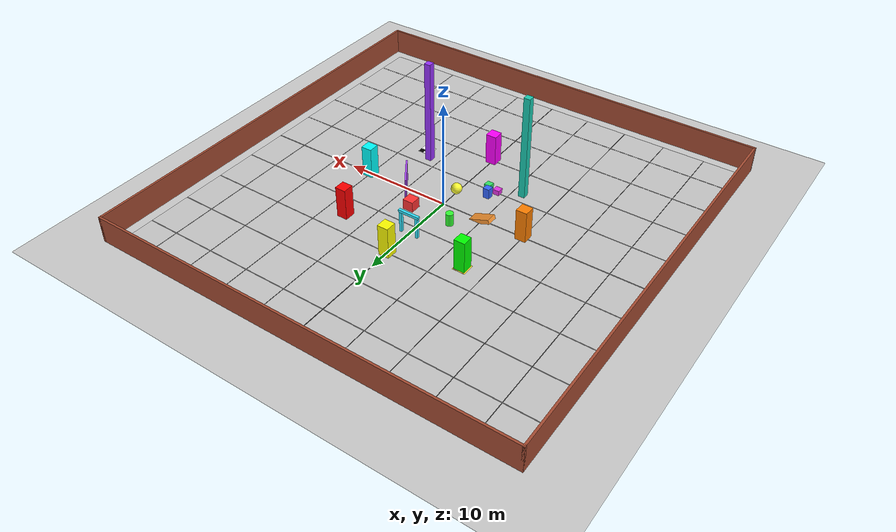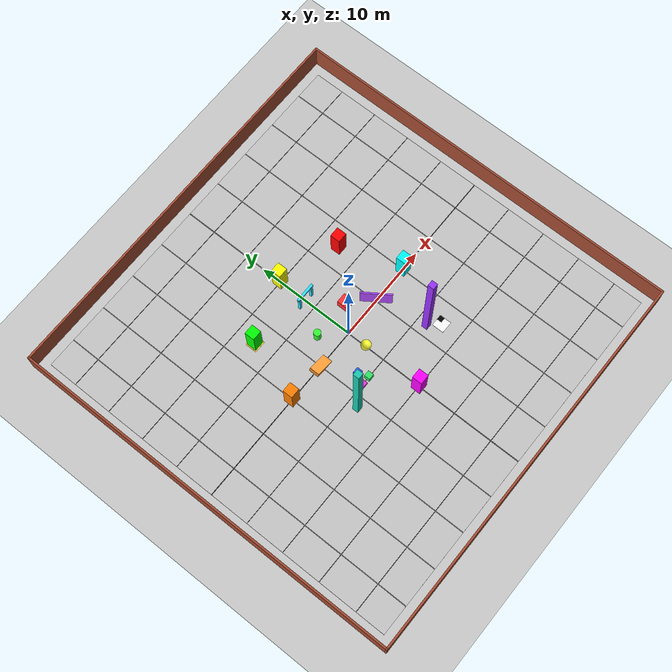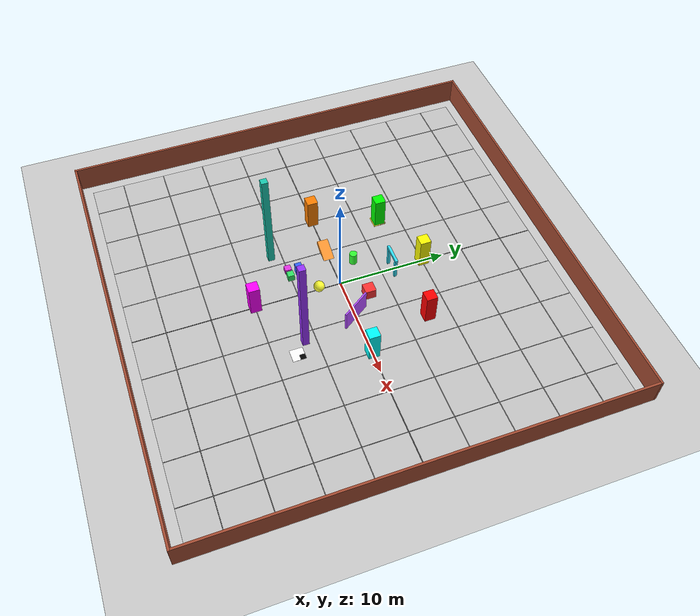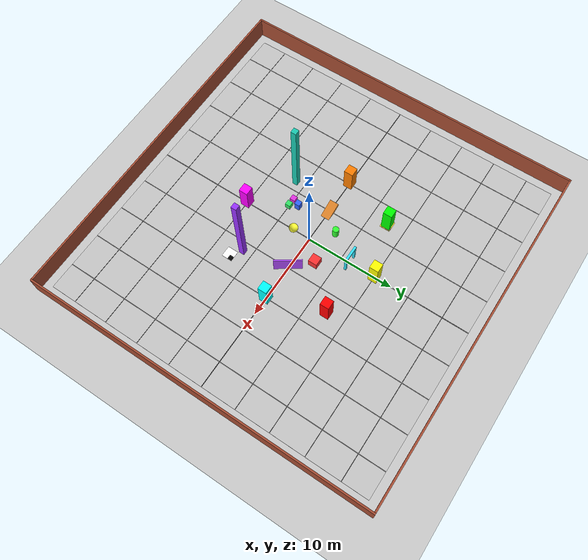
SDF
<sdf version='1.6'>
  <world name='default'>

    <light name='sun' type='directional'>
      <cast_shadows>0</cast_shadows>
      <pose>0 0 10 0 0 0</pose>
      <diffuse>0.8 0.8 0.8 1</diffuse>
      <specular>0.2 0.2 0.2 1</specular>
      <direction>-0.5 0.1 -0.9</direction>
    </light>

    <physics name='default_physics' default='1' type='ode'>
      <max_step_size>0.004</max_step_size>
      <real_time_factor>1</real_time_factor>
      <real_time_update_rate>250</real_time_update_rate>
    </physics>

    <scene>
      <ambient>0.4 0.4 0.4 1</ambient>
      <background>0.7 0.7 0.7 1</background>
      <shadows>0</shadows>
    </scene>

    <gravity>0 0 -9.8</gravity>

    <!-- 外层大地面（灰） -->
    <model name='ground_plane'>
      <static>1</static>
      <link name='link'>
        <collision name='collision'>
          <geometry>
            <plane>
              <normal>0 0 1</normal>
              <size>200 200</size>
            </plane>
          </geometry>
        </collision>
        <visual name='visual'>
          <cast_shadows>0</cast_shadows>
          <geometry>
            <plane>
              <normal>0 0 1</normal>
              <size>200 200</size>
            </plane>
          </geometry>
          <material>
            <script>
              <uri>file://media/materials/scripts/gazebo.material</uri>
              <name>Gazebo/Grey</name>
            </script>
          </material>
        </visual>
      </link>
    </model>

    <!-- 围墙内“VINS友好地面”：浅灰底（混凝土感） -->
    <model name='vins_floor'>
      <static>1</static>
      <!-- 抬高一点点避免 z-fighting -->
      <pose>0 0 0.015 0 0 0</pose>
      <link name='link'>
        <collision name='collision'>
          <geometry><box><size>38 38 0.02</size></box></geometry>
        </collision>
        <visual name='visual'>
          <cast_shadows>0</cast_shadows>
          <geometry><box><size>38 38 0.02</size></box></geometry>
          <material>
            <!-- 浅灰，不要太白，避免过曝；也不要纯色蓝那样缺特征 -->
            <ambient>0.82 0.82 0.82 1</ambient>
            <diffuse>0.78 0.78 0.78 1</diffuse>
            <specular>0.02 0.02 0.02 1</specular>
          </material>
        </visual>
      </link>
    </model>

    <!-- 地面网格线：强对比特征（对VINS/SLAM很关键） -->
    <!-- 用一整个 model 放多条 link，性能比放几十个 model 更好 -->
    <model name='floor_grid_lines'>
      <static>1</static>

      <!-- 线条厚度/高度（越薄越像贴地涂装） -->
      <!-- 这里线宽 0.06m，高 0.01m，抬到 z=0.03 -->
      <!-- X方向长线（平行X轴，改变y位置） -->
      <link name='xline_y_-16'>
        <pose>0 -16 0.03 0 0 0</pose>
        <collision name='c'><geometry><box><size>38 0.06 0.01</size></box></geometry></collision>
        <visual name='v'><geometry><box><size>38 0.06 0.01</size></box></geometry>
          <material><ambient>0.05 0.05 0.05 1</ambient><diffuse>0.05 0.05 0.05 1</diffuse></material>
        </visual>
      </link>
      <link name='xline_y_-12'>
        <pose>0 -12 0.03 0 0 0</pose>
        <collision name='c'><geometry><box><size>38 0.06 0.01</size></box></geometry></collision>
        <visual name='v'><geometry><box><size>38 0.06 0.01</size></box></geometry>
          <material><ambient>0.05 0.05 0.05 1</ambient><diffuse>0.05 0.05 0.05 1</diffuse></material>
        </visual>
      </link>
      <link name='xline_y_-8'>
        <pose>0 -8 0.03 0 0 0</pose>
        <collision name='c'><geometry><box><size>38 0.06 0.01</size></box></geometry></collision>
        <visual name='v'><geometry><box><size>38 0.06 0.01</size></box></geometry>
          <material><ambient>0.05 0.05 0.05 1</ambient><diffuse>0.05 0.05 0.05 1</diffuse></material>
        </visual>
      </link>
      <link name='xline_y_-4'>
        <pose>0 -4 0.03 0 0 0</pose>
        <collision name='c'><geometry><box><size>38 0.06 0.01</size></box></geometry></collision>
        <visual name='v'><geometry><box><size>38 0.06 0.01</size></box></geometry>
          <material><ambient>0.05 0.05 0.05 1</ambient><diffuse>0.05 0.05 0.05 1</diffuse></material>
        </visual>
      </link>
      <link name='xline_y_0'>
        <pose>0 0 0.03 0 0 0</pose>
        <collision name='c'><geometry><box><size>38 0.08 0.012</size></box></geometry></collision>
        <visual name='v'><geometry><box><size>38 0.08 0.012</size></box></geometry>
          <!-- 中心线稍宽 -->
          <material><ambient>0.02 0.02 0.02 1</ambient><diffuse>0.02 0.02 0.02 1</diffuse></material>
        </visual>
      </link>
      <link name='xline_y_4'>
        <pose>0 4 0.03 0 0 0</pose>
        <collision name='c'><geometry><box><size>38 0.06 0.01</size></box></geometry></collision>
        <visual name='v'><geometry><box><size>38 0.06 0.01</size></box></geometry>
          <material><ambient>0.05 0.05 0.05 1</ambient><diffuse>0.05 0.05 0.05 1</diffuse></material>
        </visual>
      </link>
      <link name='xline_y_8'>
        <pose>0 8 0.03 0 0 0</pose>
        <collision name='c'><geometry><box><size>38 0.06 0.01</size></box></geometry></collision>
        <visual name='v'><geometry><box><size>38 0.06 0.01</size></box></geometry>
          <material><ambient>0.05 0.05 0.05 1</ambient><diffuse>0.05 0.05 0.05 1</diffuse></material>
        </visual>
      </link>
      <link name='xline_y_12'>
        <pose>0 12 0.03 0 0 0</pose>
        <collision name='c'><geometry><box><size>38 0.06 0.01</size></box></geometry></collision>
        <visual name='v'><geometry><box><size>38 0.06 0.01</size></box></geometry>
          <material><ambient>0.05 0.05 0.05 1</ambient><diffuse>0.05 0.05 0.05 1</diffuse></material>
        </visual>
      </link>
      <link name='xline_y_16'>
        <pose>0 16 0.03 0 0 0</pose>
        <collision name='c'><geometry><box><size>38 0.06 0.01</size></box></geometry></collision>
        <visual name='v'><geometry><box><size>38 0.06 0.01</size></box></geometry>
          <material><ambient>0.05 0.05 0.05 1</ambient><diffuse>0.05 0.05 0.05 1</diffuse></material>
        </visual>
      </link>

      <!-- Y方向长线（平行Y轴，改变x位置） -->
      <link name='yline_x_-16'>
        <pose>-16 0 0.03 0 0 0</pose>
        <collision name='c'><geometry><box><size>0.06 38 0.01</size></box></geometry></collision>
        <visual name='v'><geometry><box><size>0.06 38 0.01</size></box></geometry>
          <material><ambient>0.05 0.05 0.05 1</ambient><diffuse>0.05 0.05 0.05 1</diffuse></material>
        </visual>
      </link>
      <link name='yline_x_-12'>
        <pose>-12 0 0.03 0 0 0</pose>
        <collision name='c'><geometry><box><size>0.06 38 0.01</size></box></geometry></collision>
        <visual name='v'><geometry><box><size>0.06 38 0.01</size></box></geometry>
          <material><ambient>0.05 0.05 0.05 1</ambient><diffuse>0.05 0.05 0.05 1</diffuse></material>
        </visual>
      </link>
      <link name='yline_x_-8'>
        <pose>-8 0 0.03 0 0 0</pose>
        <collision name='c'><geometry><box><size>0.06 38 0.01</size></box></geometry></collision>
        <visual name='v'><geometry><box><size>0.06 38 0.01</size></box></geometry>
          <material><ambient>0.05 0.05 0.05 1</ambient><diffuse>0.05 0.05 0.05 1</diffuse></material>
        </visual>
      </link>
      <link name='yline_x_-4'>
        <pose>-4 0 0.03 0 0 0</pose>
        <collision name='c'><geometry><box><size>0.06 38 0.01</size></box></geometry></collision>
        <visual name='v'><geometry><box><size>0.06 38 0.01</size></box></geometry>
          <material><ambient>0.05 0.05 0.05 1</ambient><diffuse>0.05 0.05 0.05 1</diffuse></material>
        </visual>
      </link>
      <link name='yline_x_0'>
        <pose>0 0 0.03 0 0 0</pose>
        <collision name='c'><geometry><box><size>0.08 38 0.012</size></box></geometry></collision>
        <visual name='v'><geometry><box><size>0.08 38 0.012</size></box></geometry>
          <material><ambient>0.02 0.02 0.02 1</ambient><diffuse>0.02 0.02 0.02 1</diffuse></material>
        </visual>
      </link>
      <link name='yline_x_4'>
        <pose>4 0 0.03 0 0 0</pose>
        <collision name='c'><geometry><box><size>0.06 38 0.01</size></box></geometry></collision>
        <visual name='v'><geometry><box><size>0.06 38 0.01</size></box></geometry>
          <material><ambient>0.05 0.05 0.05 1</ambient><diffuse>0.05 0.05 0.05 1</diffuse></material>
        </visual>
      </link>
      <link name='yline_x_8'>
        <pose>8 0 0.03 0 0 0</pose>
        <collision name='c'><geometry><box><size>0.06 38 0.01</size></box></geometry></collision>
        <visual name='v'><geometry><box><size>0.06 38 0.01</size></box></geometry>
          <material><ambient>0.05 0.05 0.05 1</ambient><diffuse>0.05 0.05 0.05 1</diffuse></material>
        </visual>
      </link>
      <link name='yline_x_12'>
        <pose>12 0 0.03 0 0 0</pose>
        <collision name='c'><geometry><box><size>0.06 38 0.01</size></box></geometry></collision>
        <visual name='v'><geometry><box><size>0.06 38 0.01</size></box></geometry>
          <material><ambient>0.05 0.05 0.05 1</ambient><diffuse>0.05 0.05 0.05 1</diffuse></material>
        </visual>
      </link>
      <link name='yline_x_16'>
        <pose>16 0 0.03 0 0 0</pose>
        <collision name='c'><geometry><box><size>0.06 38 0.01</size></box></geometry></collision>
        <visual name='v'><geometry><box><size>0.06 38 0.01</size></box></geometry>
          <material><ambient>0.05 0.05 0.05 1</ambient><diffuse>0.05 0.05 0.05 1</diffuse></material>
        </visual>
      </link>

    </model>

    <!-- 少量高对比“标记块”（像地贴/标志），增强近地纹理与角点 -->
    <model name='floor_markers'>
      <static>1</static>

      <link name='m1'>
        <pose>6 -6 0.031 0 0 0</pose>
        <collision name='c'><geometry><box><size>1.2 1.2 0.01</size></box></geometry></collision>
        <visual name='v'><geometry><box><size>1.2 1.2 0.01</size></box></geometry>
          <material><ambient>1 1 1 1</ambient><diffuse>1 1 1 1</diffuse></material>
        </visual>
      </link>

      <link name='m2'>
        <pose>6.35 -5.65 0.032 0 0 0</pose>
        <collision name='c'><geometry><box><size>0.5 0.5 0.01</size></box></geometry></collision>
        <visual name='v'><geometry><box><size>0.5 0.5 0.01</size></box></geometry>
          <material><ambient>0 0 0 1</ambient><diffuse>0 0 0 1</diffuse></material>
        </visual>
      </link>

      <link name='m3'>
        <pose>-6 6 0.031 0 0 0</pose>
        <collision name='c'><geometry><box><size>1.2 1.2 0.01</size></box></geometry></collision>
        <visual name='v'><geometry><box><size>1.2 1.2 0.01</size></box></geometry>
          <material><ambient>1 0.9 0.2 1</ambient><diffuse>1 0.9 0.2 1</diffuse></material>
        </visual>
      </link>

      <link name='m4'>
        <pose>-5.7 6.3 0.032 0 0 0</pose>
        <collision name='c'><geometry><box><size>0.5 0.5 0.01</size></box></geometry></collision>
        <visual name='v'><geometry><box><size>0.5 0.5 0.01</size></box></geometry>
          <material><ambient>0 0 0 1</ambient><diffuse>0 0 0 1</diffuse></material>
        </visual>
      </link>

    </model>

    <!-- 围墙：40x40，中心在(0,0)，墙高2.5 -->
    <model name='walls'>
      <static>1</static>

      <!-- 北墙 y=+20 -->
      <link name='wall_n'>
        <pose>0 20 1.25 0 0 0</pose>
        <collision name='collision'>
          <geometry><box><size>40.2 0.2 2.5</size></box></geometry>
        </collision>
        <visual name='visual'>
          <geometry><box><size>40.2 0.2 2.5</size></box></geometry>
          <material>
            <script>
              <uri>file://media/materials/scripts/gazebo.material</uri>
              <name>Gazebo/Bricks</name>
            </script>
          </material>
        </visual>
      </link>

      <!-- 南墙 y=-20 -->
      <link name='wall_s'>
        <pose>0 -20 1.25 0 0 0</pose>
        <collision name='collision'>
          <geometry><box><size>40.2 0.2 2.5</size></box></geometry>
        </collision>
        <visual name='visual'>
          <geometry><box><size>40.2 0.2 2.5</size></box></geometry>
          <material>
            <script>
              <uri>file://media/materials/scripts/gazebo.material</uri>
              <name>Gazebo/Bricks</name>
            </script>
          </material>
        </visual>
      </link>

      <!-- 东墙 x=+20 -->
      <link name='wall_e'>
        <pose>20 0 1.25 0 0 0</pose>
        <collision name='collision'>
          <geometry><box><size>0.2 40.2 2.5</size></box></geometry>
        </collision>
        <visual name='visual'>
          <geometry><box><size>0.2 40.2 2.5</size></box></geometry>
          <material>
            <script>
              <uri>file://media/materials/scripts/gazebo.material</uri>
              <name>Gazebo/Bricks</name>
            </script>
          </material>
        </visual>
      </link>

      <!-- 西墙 x=-20 -->
      <link name='wall_w'>
        <pose>-20 0 1.25 0 0 0</pose>
        <collision name='collision'>
          <geometry><box><size>0.2 40.2 2.5</size></box></geometry>
        </collision>
        <visual name='visual'>
          <geometry><box><size>0.2 40.2 2.5</size></box></geometry>
          <material>
            <script>
              <uri>file://media/materials/scripts/gazebo.material</uri>
              <name>Gazebo/Bricks</name>
            </script>
          </material>
        </visual>
      </link>

    </model>

    <!-- ===== 彩色立方体障碍物：全部 box ===== -->
    <model name='ob_red'>
      <static>1</static>
      <pose>6 6 1.5 0 0 0</pose>
      <link name='link'>
        <collision name='collision'><geometry><box><size>1 1 3</size></box></geometry></collision>
        <visual name='visual'>
          <geometry><box><size>1 1 3</size></box></geometry>
          <material><ambient>1 0 0 1</ambient><diffuse>1 0 0 1</diffuse></material>
        </visual>
      </link>
    </model>

    <model name='ob_green'>
      <static>1</static>
      <pose>-6 6 1.5 0 0 0</pose>
      <link name='link'>
        <collision name='collision'><geometry><box><size>1 1 3</size></box></geometry></collision>
        <visual name='visual'>
          <geometry><box><size>1 1 3</size></box></geometry>
          <material><ambient>0 1 0 1</ambient><diffuse>0 1 0 1</diffuse></material>
        </visual>
      </link>
    </model>

    <model name='ob_yellow'>
      <static>1</static>
      <pose>0 8 1.5 0 0 0</pose>
      <link name='link'>
        <collision name='collision'><geometry><box><size>1 1 3</size></box></geometry></collision>
        <visual name='visual'>
          <geometry><box><size>1 1 3</size></box></geometry>
          <material><ambient>1 1 0 1</ambient><diffuse>1 1 0 1</diffuse></material>
        </visual>
      </link>
    </model>

    <model name='ob_cyan'>
      <static>1</static>
      <pose>8 0 1.5 0 0 0</pose>
      <link name='link'>
        <collision name='collision'><geometry><box><size>1 1 3</size></box></geometry></collision>
        <visual name='visual'>
          <geometry><box><size>1 1 3</size></box></geometry>
          <material><ambient>0 1 1 1</ambient><diffuse>0 1 1 1</diffuse></material>
        </visual>
      </link>
    </model>

    <model name='ob_magenta'>
      <static>1</static>
      <pose>0 -8 1.5 0 0 0</pose>
      <link name='link'>
        <collision name='collision'><geometry><box><size>1 1 3</size></box></geometry></collision>
        <visual name='visual'>
          <geometry><box><size>1 1 3</size></box></geometry>
          <material><ambient>1 0 1 1</ambient><diffuse>1 0 1 1</diffuse></material>
        </visual>
      </link>
    </model>

    <model name='ob_orange'>
      <static>1</static>
      <pose>-8 0 1.5 0 0 0</pose>
      <link name='link'>
        <collision name='collision'><geometry><box><size>1 1 3</size></box></geometry></collision>
        <visual name='visual'>
          <geometry><box><size>1 1 3</size></box></geometry>
          <material><ambient>1 0.5 0 1</ambient><diffuse>1 0.5 0 1</diffuse></material>
        </visual>
      </link>
    </model>

    <!-- 高塔 -->
    <model name='tower_purple'>
      <static>1</static>
      <pose>5 -5 5 0 0 0</pose>
      <link name='link'>
        <collision name='collision'><geometry><box><size>0.6 0.6 10</size></box></geometry></collision>
        <visual name='visual'>
          <geometry><box><size>0.6 0.6 10</size></box></geometry>
          <material><ambient>0.6 0.2 1 1</ambient><diffuse>0.6 0.2 1 1</diffuse></material>
        </visual>
      </link>
    </model>

    <model name='tower_teal'>
      <static>1</static>
      <pose>-5 -5 5 0 0 0</pose>
      <link name='link'>
        <collision name='collision'><geometry><box><size>0.6 0.6 10</size></box></geometry></collision>
        <visual name='visual'>
          <geometry><box><size>0.6 0.6 10</size></box></geometry>
          <material><ambient>0.1 0.8 0.7 1</ambient><diffuse>0.1 0.8 0.7 1</diffuse></material>
        </visual>
      </link>
    </model>

    <!-- ================== Custom Obstacles (static primitives) ================== -->

    <model name='obs_box_red'>
      <static>1</static>
      <pose>2 2 0.5 0 0 0</pose>
      <link name='link'>
        <collision name='col'><geometry><box><size>1 1 1</size></box></geometry></collision>
        <visual name='vis'>
          <geometry><box><size>1 1 1</size></box></geometry>
          <material>
            <ambient>1 0.2 0.2 1</ambient>
            <diffuse>1 0.2 0.2 1</diffuse>
            <specular>0.05 0.05 0.05 1</specular>
          </material>
        </visual>
      </link>
    </model>

    <!-- 你这里仍保留了圆柱/球体/坡道等：用于深度/规划测试也有价值 -->
    <model name='obs_cyl_green'>
      <static>1</static>
      <pose>-2 2 0.6 0 0 0</pose>
      <link name='link'>
        <collision name='col'><geometry><cylinder><radius>0.35</radius><length>1.2</length></cylinder></geometry></collision>
        <visual name='vis'>
          <geometry><cylinder><radius>0.35</radius><length>1.2</length></cylinder></geometry>
          <material>
            <ambient>0.2 1 0.2 1</ambient>
            <diffuse>0.2 1 0.2 1</diffuse>
            <specular>0.05 0.05 0.05 1</specular>
          </material>
        </visual>
      </link>
    </model>

    <model name='obs_sphere_yellow'>
      <static>1</static>
      <pose>0 -2 0.5 0 0 0</pose>
      <link name='link'>
        <collision name='col'><geometry><sphere><radius>0.5</radius></sphere></geometry></collision>
        <visual name='vis'>
          <geometry><sphere><radius>0.5</radius></sphere></geometry>
          <material>
            <ambient>1 1 0.2 1</ambient>
            <diffuse>1 1 0.2 1</diffuse>
            <specular>0.05 0.05 0.05 1</specular>
          </material>
        </visual>
      </link>
    </model>

    <model name='obs_panel_purple'>
      <static>1</static>
      <pose>4 0 1 0 0 0.6</pose>
      <link name='link'>
        <collision name='col'><geometry><box><size>0.15 3.0 2.0</size></box></geometry></collision>
        <visual name='vis'>
          <geometry><box><size>0.15 3.0 2.0</size></box></geometry>
          <material>
            <ambient>0.7 0.3 1 1</ambient>
            <diffuse>0.7 0.3 1 1</diffuse>
            <specular>0.05 0.05 0.05 1</specular>
          </material>
        </visual>
      </link>
    </model>

    <model name='obs_ramp_orange'>
      <static>1</static>
      <pose>-4 0 0.2 0 0.35 0</pose>
      <link name='link'>
        <collision name='col'><geometry><box><size>2.0 1.0 0.4</size></box></geometry></collision>
        <visual name='vis'>
          <geometry><box><size>2.0 1.0 0.4</size></box></geometry>
          <material>
            <ambient>1 0.6 0.2 1</ambient>
            <diffuse>1 0.6 0.2 1</diffuse>
            <specular>0.05 0.05 0.05 1</specular>
          </material>
        </visual>
      </link>
    </model>

    <model name='obs_gate_cyan'>
      <static>1</static>
      <pose>0 5 0 0 0 0</pose>

      <link name='left'>
        <pose>-0.8 0 1 0 0 0</pose>
        <collision name='col'><geometry><box><size>0.25 0.25 2.0</size></box></geometry></collision>
        <visual name='vis'>
          <geometry><box><size>0.25 0.25 2.0</size></box></geometry>
          <material><ambient>0.2 0.9 1 1</ambient><diffuse>0.2 0.9 1 1</diffuse></material>
        </visual>
      </link>

      <link name='right'>
        <pose>0.8 0 1 0 0 0</pose>
        <collision name='col'><geometry><box><size>0.25 0.25 2.0</size></box></geometry></collision>
        <visual name='vis'>
          <geometry><box><size>0.25 0.25 2.0</size></box></geometry>
          <material><ambient>0.2 0.9 1 1</ambient><diffuse>0.2 0.9 1 1</diffuse></material>
        </visual>
      </link>

      <link name='top'>
        <pose>0 0 2.1 0 0 0</pose>
        <collision name='col'><geometry><box><size>2.0 0.25 0.25</size></box></geometry></collision>
        <visual name='vis'>
          <geometry><box><size>2.0 0.25 0.25</size></box></geometry>
          <material><ambient>0.2 0.9 1 1</ambient><diffuse>0.2 0.9 1 1</diffuse></material>
        </visual>
      </link>
    </model>

    <model name='obs_blocks_cluster'>
      <static>1</static>
      <pose>-3 -4 0 0 0 0</pose>

      <link name='b1'>
        <pose>0 0 0.25 0 0 0</pose>
        <collision name='col'><geometry><box><size>0.6 0.6 0.5</size></box></geometry></collision>
        <visual name='vis'>
          <geometry><box><size>0.6 0.6 0.5</size></box></geometry>
          <material><ambient>0.9 0.2 0.9 1</ambient><diffuse>0.9 0.2 0.9 1</diffuse></material>
        </visual>
      </link>

      <link name='b2'>
        <pose>0.9 0 0.35 0 0 0</pose>
        <collision name='col'><geometry><box><size>0.6 0.6 0.7</size></box></geometry></collision>
        <visual name='vis'>
          <geometry><box><size>0.6 0.6 0.7</size></box></geometry>
          <material><ambient>0.2 0.9 0.4 1</ambient><diffuse>0.2 0.9 0.4 1</diffuse></material>
        </visual>
      </link>

      <link name='b3'>
        <pose>0.45 0.9 0.5 0 0 0</pose>
        <collision name='col'><geometry><box><size>0.6 0.6 1.0</size></box></geometry></collision>
        <visual name='vis'>
          <geometry><box><size>0.6 0.6 1.0</size></box></geometry>
          <material><ambient>0.2 0.4 1 1</ambient><diffuse>0.2 0.4 1 1</diffuse></material>
        </visual>
      </link>
    </model>

    <!-- ================== End Custom Obstacles ================== -->

  </world>
</sdf>
